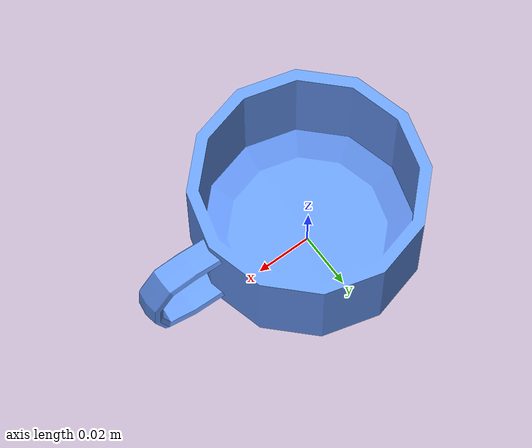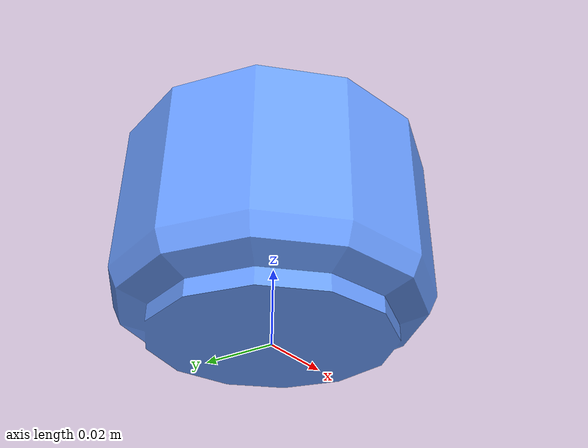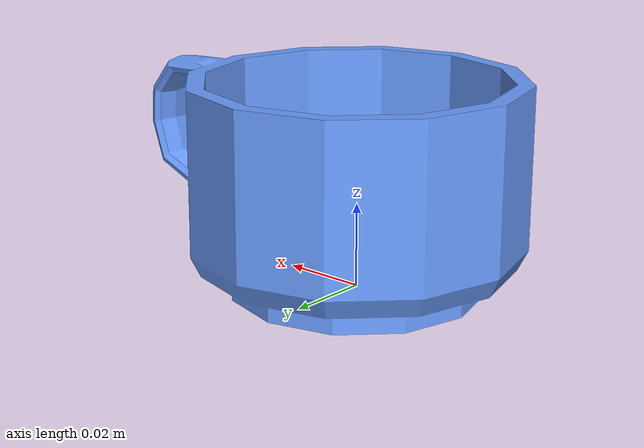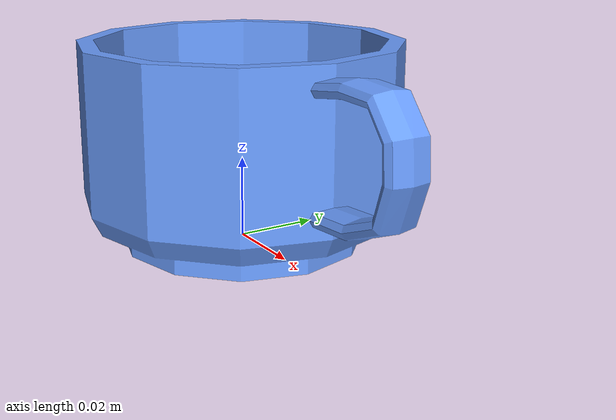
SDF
<?xml version='1.0'?>
<sdf version="1.4">
	<model name="cup">
		<static>1</static>
		<link name="link">
			<visual name="mesh">
				<geometry>
					<mesh>
						<uri>model://meshes/cup.dae</uri>
					</mesh>
				</geometry>
			</visual>
			<collision name="collider">
				<pose>0 0 0.025 0 0 0</pose>
				<geometry>
					<cylinder>
						<radius>0.04</radius>
						<length>0.05</length>
					</cylinder>
				</geometry>
			</collision>
		</link>
	</model>
</sdf>
